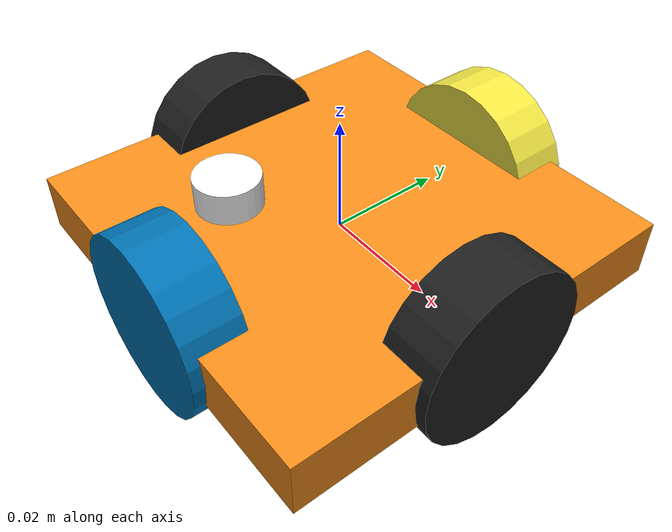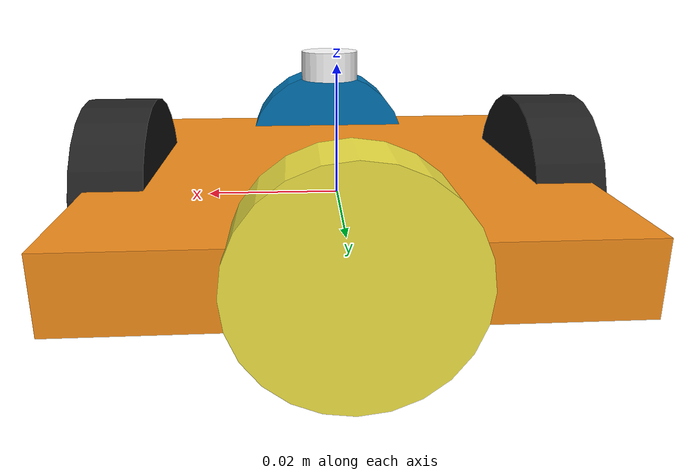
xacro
<?xml version="1.0" ?>
<robot name="my_mm_robot" xmlns:xacro="https://www.ros.org/wiki/xacro" >
  <xacro:include filename="$(find pkg_techfest_imc)/urdf/chassis.xacro" />
  <xacro:include filename="$(find pkg_techfest_imc)/urdf/wheel.xacro" />
  <material name="black">
    <color rgba="0.0 0.0 0.0 1.0"/>
  </material>
  <material name="blue">
    <color rgba="0.203125 0.23828125 0.28515625 1.0"/>
  </material>
  <material name="green">
    <color rgba="0.0 0.8 0.0 1.0"/>
  </material>
  <material name="grey">
    <color rgba="0.2 0.2 0.2 1.0"/>
  </material>
  <material name="orange">
    <color rgba="1.0 0.423529411765 0.0392156862745 1.0"/>
  </material>
  <material name="brown">
    <color rgba="0.870588235294 0.811764705882 0.764705882353 1.0"/>
  </material>
  <material name="red">
    <color rgba="0.80078125 0.12890625 0.1328125 1.0"/>
  </material>
  <material name="white">
    <color rgba="1.0 1.0 1.0 1.0"/>
  </material>
  <gazebo reference="link_chassis">
    <material>Gazebo/Orange</material>
  </gazebo>
  <gazebo reference="link_left_wheel">
    <material>Gazebo/Black</material>
  </gazebo>
  <gazebo reference="link_right_wheel">
    <material>Gazebo/Black</material>
  </gazebo>

  <xacro:chassis name="link_chassis" len="0.07" wd="0.07" h="0.01" origin_xyz="0 0 0" origin_rpi="0 0 0" m="0.5" />
  <xacro:wheel_x name="link_left_wheel" h="0.01" r="0.015" m="0.2" />
  <xacro:joint_wheel_x name="joint_left_wheel" parent="link_chassis" child="link_left_wheel" origin_xyz="0.032 0.0 0" />
  <xacro:wheel_x name="link_right_wheel" h="0.01" r="0.015" m="0.2" />
  <xacro:joint_wheel_x name="joint_right_wheel" parent="link_chassis" child="link_right_wheel" origin_xyz="-0.032 0.0 0" />
  <xacro:wheel_y name="link_front_wheel" h="0.01" r="0.015" m="0.2" />
  <xacro:joint_wheel_y name="joint_front_wheel" parent="link_chassis" child="link_front_wheel" origin_xyz="0 0.032 0" />
  <xacro:wheel_y name="link_back_wheel" h="0.01" r="0.015" m="0.2" />
  <xacro:joint_wheel_y name="joint_back_wheel" parent="link_chassis" child="link_back_wheel" origin_xyz="0 -0.032 0" />

  <gazebo>
    <plugin filename="libgazebo_ros_diff_drive.so" name="differential_drive_controller">
      <alwaysOn>true</alwaysOn>
      <updateRate>20</updateRate>
      <leftJoint>joint_left_wheel</leftJoint>
      <rightJoint>joint_right_wheel</rightJoint>
      <wheelSeparation>0.064</wheelSeparation>
      <wheelDiameter>0.03</wheelDiameter>
      <torque>10</torque>
      <commandTopic>cmd_vel_y</commandTopic>
      <odometryTopic>odom</odometryTopic>
      <odometryFrame>odom</odometryFrame>
      <robotBaseFrame>link_chassis</robotBaseFrame>
    </plugin>
  </gazebo>
  <gazebo>
    <plugin filename="libgazebo_ros_diff_drive.so" name="differential_drive_controller">
      <alwaysOn>true</alwaysOn>
      <updateRate>20</updateRate>
      <leftJoint>joint_front_wheel</leftJoint>
      <rightJoint>joint_back_wheel</rightJoint>
      <wheelSeparation>0.064</wheelSeparation>
      <wheelDiameter>0.03</wheelDiameter>
      <torque>10</torque>
      <commandTopic>cmd_vel_x</commandTopic>
      <odometryTopic>odom</odometryTopic>
      <odometryFrame>odom</odometryFrame>
      <robotBaseFrame>link_chassis</robotBaseFrame>
    </plugin>
  </gazebo>
    <!--
    Adding a laser scan sensor to the robot
  -->
  <link name="sensor_laser">
    <inertial>
      <origin xyz="0 0 0" rpy="0 0 0" />
      <mass value="0.01" />
      <inertia ixx="0.02" ixy="0" ixz="0" iyy="0.02" iyz="0" izz="0.02"/>
    </inertial>

    <visual>
      <origin xyz="0.02 0 0" rpy="0 0 0" />
      <geometry>
        <cylinder radius="0.005" length="0.005"/>
      </geometry>
      <material name="white" />
    </visual>

    <collision>
      <origin xyz="0 0 0" rpy="0 0 0"/>
      <geometry>
        <cylinder radius="0.005" length="0.001"/>
      </geometry>
    </collision>
  </link>

  <joint name="joint_sensor_laser" type="fixed">
    <origin rpy="0  0  -1.57" xyz="0    0    0.0175"/>
    <parent link="link_chassis"/>
    <child link="sensor_laser"/>
  </joint>
  <gazebo reference="sensor_laser">
    <sensor type="ray" name="head_hokuyo_sensor">
      <pose>0 0 0 0 0 0</pose>
      <visualize>true</visualize>
      <update_rate>20</update_rate>
      <ray>
        <scan>
          <horizontal>
            <samples>720</samples>
            <resolution>1</resolution>
            <min_angle>-3.1415926</min_angle>
            <max_angle>3.1415926</max_angle>
          </horizontal>
        </scan>
        <range>
          <min>0.04</min>
          <max>3.5</max>
          <resolution>0.01</resolution>
        </range>
      </ray>
      <plugin name="gazebo_ros_head_hokuyo_controller" filename="libgazebo_ros_laser.so">
        <topicName>/my_mm_robot/laser/scan</topicName>
        <frameName>sensor_laser</frameName>
      </plugin>
    </sensor>
  </gazebo>
</robot>

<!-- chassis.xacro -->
<robot xmlns:xacro="http://www.ros.org/wiki/xacro">
    <xacro:macro name="chassis" params="name len wd h origin_xyz origin_rpi m">
        <link name="${name}">
            <inertial>
              <mass value="${m}"/>
              <origin rpy="${origin_rpi}" xyz="${origin_xyz}"/>
              <inertia ixx="${m*(wd*wd+h*h)}" ixy="0" ixz="0" iyy="${m*(len*len+h*h)}" iyz="0" izz="${m*(len*len + wd*wd)}"/>
            </inertial>
            <collision name="${name}_collision">
              <origin rpy="0 0 0" xyz="0 0 0"/>
              <geometry>
               <box size="${len} ${wd} ${h}"/>
              </geometry>
            </collision>
            <visual name="${name}_visual">
              <origin rpy="0 0 0" xyz="0 0 0"/>
              <geometry>
                <box size="${len} ${wd} ${h}"/>
              </geometry>
            </visual>
        </link>
    </xacro:macro>
</robot>

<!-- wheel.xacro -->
<robot xmlns:xacro="http://www.ros.org/wiki/xacro">
    <xacro:macro name="wheel_x" params="name h r m">
        <link name="${name}">
            <inertial>
              <mass value="${m}"/>
              <origin rpy="0 0 0" xyz="0 0 0"/>
              <inertia ixx="${m*(3*r*r+h*h)/12}" ixy="0" ixz="0" iyy="${m*(3*r*r+h*h)/12}" iyz="0" izz="${m*(r*r)/4}"/>
            </inertial>
            <collision name="${name}_collision">
              <origin rpy="0 1.57079 0" xyz="0 0 0"/>
              <geometry>
               <cylinder length="${h}" radius="${r}"/>
              </geometry>
            </collision>
            <visual name="${name}_visual">
              <origin rpy="0 1.57079 0" xyz="0 0 0"/>
              <geometry>
                <cylinder length="${h}" radius="${r}"/>
              </geometry>
            </visual>
        </link>
    </xacro:macro>
    <xacro:macro name="wheel_y" params="name h r m">
        <link name="${name}">
            <inertial>
              <mass value="${m}"/>
              <origin rpy="0 0 0" xyz="0 0 0"/>
              <inertia ixx="${m*(3*r*r+h*h)/12}" ixy="0" ixz="0" iyy="${m*(3*r*r+h*h)/12}" iyz="0" izz="${m*(r*r)/4}"/>
            </inertial>
            <collision name="${name}_collision">
              <origin rpy="0 1.57079 1.57079" xyz="0 0 0"/>
              <geometry>
               <cylinder length="${h}" radius="${r}"/>
              </geometry>
            </collision>
            <visual name="${name}_visual">
              <origin rpy="0 1.57079 1.57079" xyz="0 0 0"/>
              <geometry>
                <cylinder length="${h}" radius="${r}"/>
              </geometry>
            </visual>
        </link>
    </xacro:macro>

    <xacro:macro name="joint_wheel_x" params="name parent child origin_xyz">
      <joint name="${name}" type="continuous">
        <origin rpy="0 0 0" xyz="${origin_xyz}"/>
        <child link="${child}"/>
        <parent link="${parent}"/>
        <axis rpy="0 0 0" xyz="1 0 0"/>
        <limit effort="10000" velocity="1000"/>
        <joint_properties damping="1.0" friction="1.0"/>
      </joint>
    </xacro:macro>

    <xacro:macro name="joint_wheel_y" params="name parent child origin_xyz">
      <joint name="${name}" type="continuous">
        <origin rpy="0 0 0" xyz="${origin_xyz}"/>
        <child link="${child}"/>
        <parent link="${parent}"/>
        <axis rpy="0 0 0" xyz="0 1 0"/>
        <limit effort="10000" velocity="1000"/>
        <joint_properties damping="1.0" friction="1.0"/>
      </joint>
    </xacro:macro>

</robot>
